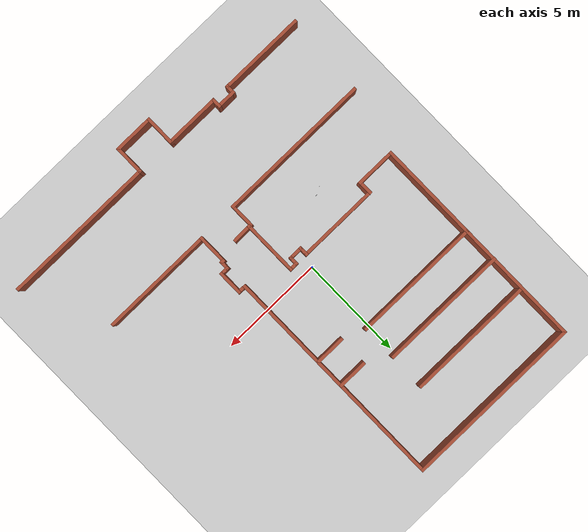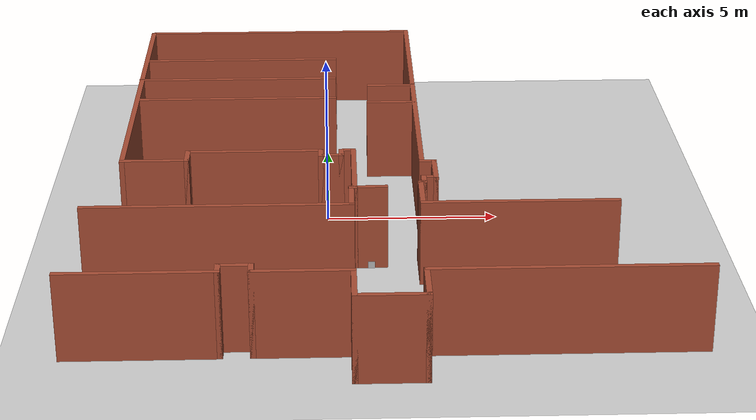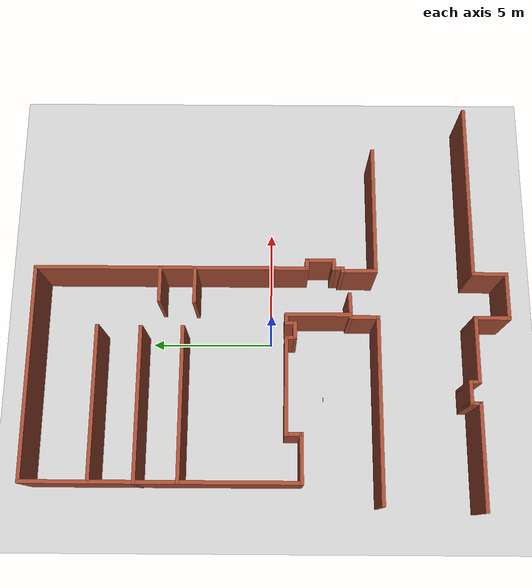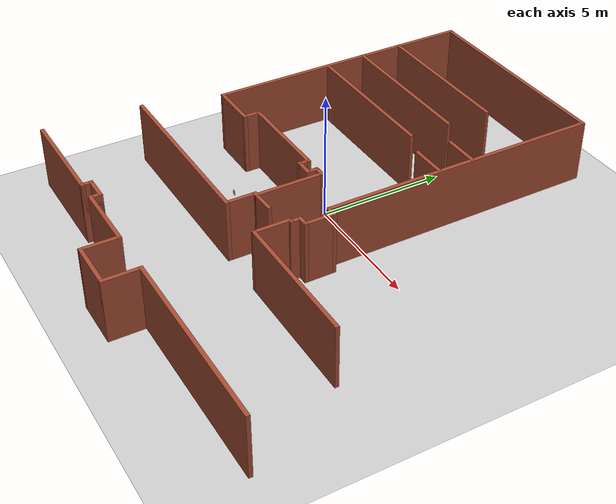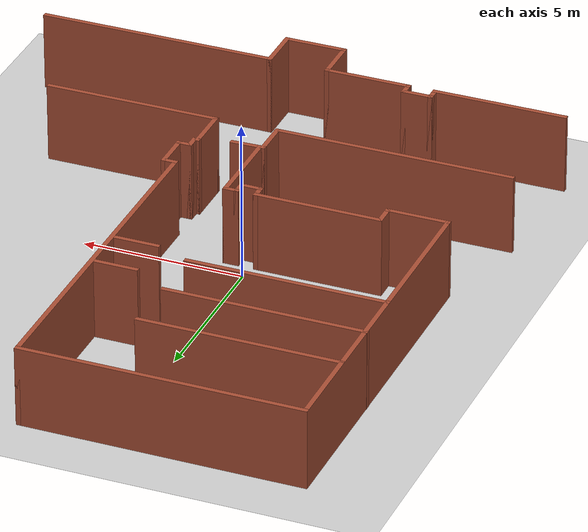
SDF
<sdf version="1.7">
 <world name="default">
  <light name="sun" type="directional">
   <pose>0 0 10 0 -0 0</pose>
   <diffuse>0.8 0.8 0.8 1</diffuse>
   <specular>0.2 0.2 0.2 1</specular>
   <attenuation>
    <range>1000</range>
    <constant>0.9</constant>
    <linear>0.01</linear>
    <quadratic>0.001</quadratic>
   </attenuation>
   <direction>-0.5 0.1 -0.9</direction>
   <spot><inner_angle>0</inner_angle><outer_angle>0</outer_angle><falloff>0</falloff></spot>
  </light>
  <model name="ground_plane">
   <static>1</static>
   <link name="link">
    <collision name="collision">
     <geometry><plane><normal>0 0 1</normal><size>100 100</size></plane></geometry>
     <surface><friction><ode><mu>100</mu><mu2>50</mu2></ode></friction></surface>
    </collision>
    <visual name="visual">
     <cast_shadows>0</cast_shadows>
     <geometry><plane><normal>0 0 1</normal><size>100 100</size></plane></geometry>
     <material>
      <script><uri>file://media/materials/scripts/gazebo.material</uri><name>Gazebo/Grey</name></script>
     </material>
    </visual>
   </link>
  </model>
  <gravity>0 0 -9.8</gravity>
  <magnetic_field>6e-06 2.3e-05 -4.2e-05</magnetic_field>
  <atmosphere type="adiabatic"/>
  <physics type="ode">
   <max_step_size>0.001</max_step_size>
   <real_time_factor>1</real_time_factor>
   <real_time_update_rate>1000</real_time_update_rate>
  </physics>
  <scene><ambient>0.4 0.4 0.4 1</ambient><background>0.7 0.7 0.7 1</background><shadows>1</shadows></scene>
  <spherical_coordinates>
   <surface_model>EARTH_WGS84</surface_model>
   <latitude_deg>0</latitude_deg>
   <longitude_deg>0</longitude_deg>
   <elevation>0</elevation>
   <heading_deg>0</heading_deg>
  </spherical_coordinates>
  <model name="clase">
   <pose>1.47483 0.04807 0 0 -0 0</pose>
   <link name="Wall_1">
    <collision name="Wall_1_Collision">
     <geometry><box><size>1.00041 0.15 2.5</size></box></geometry>
     <pose>0 0 1.25 0 -0 0</pose>
    </collision>
    <visual name="Wall_1_Visual">
     <pose>0 0 1.25 0 -0 0</pose>
     <geometry><box><size>1.00041 0.15 2.5</size></box></geometry>
     <material>
      <script><uri>file://media/materials/scripts/gazebo.material</uri><name>Gazebo/Bricks</name></script>
      <ambient>1 1 1 1</ambient>
     </material>
     <meta><layer>0</layer></meta>
    </visual>
    <pose>-0.295195 -3.22706 0 0 -0 -3.11049</pose>
   </link>
   <link name="Wall_10">
    <collision name="Wall_10_Collision">
     <geometry><box><size>4 0.15 2.5</size></box></geometry>
     <pose>0 0 1.25 0 -0 0</pose>
    </collision>
    <visual name="Wall_10_Visual">
     <pose>0 0 1.25 0 -0 0</pose>
     <geometry><box><size>4 0.15 2.5</size></box></geometry>
     <material>
      <script><uri>file://media/materials/scripts/gazebo.material</uri><name>Gazebo/Bricks</name></script>
      <ambient>1 1 1 1</ambient>
     </material>
     <meta><layer>0</layer></meta>
    </visual>
    <pose>-3.59519 -0.640283 0 0 -0 3.14159</pose>
   </link>
   <link name="Wall_11">
    <collision name="Wall_11_Collision">
     <geometry><box><size>0.75 0.15 2.5</size></box></geometry>
     <pose>0 0 1.25 0 -0 0</pose>
    </collision>
    <visual name="Wall_11_Visual">
     <pose>0 0 1.25 0 -0 0</pose>
     <geometry><box><size>0.75 0.15 2.5</size></box></geometry>
     <material>
      <script><uri>file://media/materials/scripts/gazebo.material</uri><name>Gazebo/Bricks</name></script>
      <ambient>1 1 1 1</ambient>
     </material>
     <meta><layer>0</layer></meta>
    </visual>
    <pose>-5.5202 -0.940283 0 0 -0 -1.5708</pose>
   </link>
   <link name="Wall_12">
    <collision name="Wall_12_Collision">
     <geometry><box><size>2 0.15 2.5</size></box></geometry>
     <pose>0 0 1.25 0 -0 0</pose>
    </collision>
    <visual name="Wall_12_Visual">
     <pose>0 0 1.25 0 -0 0</pose>
     <geometry><box><size>2 0.15 2.5</size></box></geometry>
     <material>
      <script><uri>file://media/materials/scripts/gazebo.material</uri><name>Gazebo/Bricks</name></script>
      <ambient>1 1 1 1</ambient>
     </material>
     <meta><layer>0</layer></meta>
    </visual>
    <pose>-6.4452 -1.24028 0 0 -0 3.14159</pose>
   </link>
   <link name="Wall_13">
    <collision name="Wall_13_Collision">
     <geometry><box><size>11 0.15 2.5</size></box></geometry>
     <pose>0 0 1.25 0 -0 0</pose>
    </collision>
    <visual name="Wall_13_Visual">
     <pose>0 0 1.25 0 -0 0</pose>
     <geometry><box><size>11 0.15 2.5</size></box></geometry>
     <material>
      <script><uri>file://media/materials/scripts/gazebo.material</uri><name>Gazebo/Bricks</name></script>
      <ambient>1 1 1 1</ambient>
     </material>
     <meta><layer>0</layer></meta>
    </visual>
    <pose>-7.37019 4.18472 0 0 -0 1.5708</pose>
   </link>
   <link name="Wall_14">
    <collision name="Wall_14_Collision">
     <geometry><box><size>8.75 0.15 2.5</size></box></geometry>
     <pose>0 0 1.25 0 -0 0</pose>
    </collision>
    <visual name="Wall_14_Visual">
     <pose>0 0 1.25 0 -0 0</pose>
     <geometry><box><size>8.75 0.15 2.5</size></box></geometry>
     <material>
      <script><uri>file://media/materials/scripts/gazebo.material</uri><name>Gazebo/Bricks</name></script>
      <ambient>1 1 1 1</ambient>
     </material>
     <meta><layer>0</layer></meta>
    </visual>
    <pose>-3.0702 9.60972 0 0 -0 0</pose>
   </link>
   <link name="Wall_15">
    <collision name="Wall_15_Collision">
     <geometry><box><size>11.25 0.15 2.5</size></box></geometry>
     <pose>0 0 1.25 0 -0 0</pose>
    </collision>
    <visual name="Wall_15_Visual">
     <pose>0 0 1.25 0 -0 0</pose>
     <geometry><box><size>11.25 0.15 2.5</size></box></geometry>
     <material>
      <script><uri>file://media/materials/scripts/gazebo.material</uri><name>Gazebo/Bricks</name></script>
      <ambient>1 1 1 1</ambient>
     </material>
     <meta><layer>0</layer></meta>
    </visual>
    <pose>1.22981 4.05972 0 0 -0 -1.5708</pose>
   </link>
   <link name="Wall_16">
    <collision name="Wall_16_Collision">
     <geometry><box><size>0.5 0.15 2.5</size></box></geometry>
     <pose>0 0 1.25 0 -0 0</pose>
    </collision>
    <visual name="Wall_16_Visual">
     <pose>0 0 1.25 0 -0 0</pose>
     <geometry><box><size>0.5 0.15 2.5</size></box></geometry>
     <material>
      <script><uri>file://media/materials/scripts/gazebo.material</uri><name>Gazebo/Bricks</name></script>
      <ambient>1 1 1 1</ambient>
     </material>
     <meta><layer>0</layer></meta>
    </visual>
    <pose>1.40481 -1.49028 0 0 -0 0</pose>
   </link>
   <link name="Wall_17">
    <collision name="Wall_17_Collision">
     <geometry><box><size>1.25 0.15 2.5</size></box></geometry>
     <pose>0 0 1.25 0 -0 0</pose>
    </collision>
    <visual name="Wall_17_Visual">
     <pose>0 0 1.25 0 -0 0</pose>
     <geometry><box><size>1.25 0.15 2.5</size></box></geometry>
     <material>
      <script><uri>file://media/materials/scripts/gazebo.material</uri><name>Gazebo/Bricks</name></script>
      <ambient>1 1 1 1</ambient>
     </material>
     <meta><layer>0</layer></meta>
    </visual>
    <pose>1.5798 -2.04028 0 0 -0 -1.5708</pose>
   </link>
   <link name="Wall_18">
    <collision name="Wall_18_Collision">
     <geometry><box><size>0.5 0.15 2.5</size></box></geometry>
     <pose>0 0 1.25 0 -0 0</pose>
    </collision>
    <visual name="Wall_18_Visual">
     <pose>0 0 1.25 0 -0 0</pose>
     <geometry><box><size>0.5 0.15 2.5</size></box></geometry>
     <material>
      <script><uri>file://media/materials/scripts/gazebo.material</uri><name>Gazebo/Bricks</name></script>
      <ambient>1 1 1 1</ambient>
     </material>
     <meta><layer>0</layer></meta>
    </visual>
    <pose>1.40481 -2.59028 0 0 -0 3.14159</pose>
   </link>
   <link name="Wall_19">
    <collision name="Wall_19_Collision">
     <geometry><box><size>0.5 0.15 2.5</size></box></geometry>
     <pose>0 0 1.25 0 -0 0</pose>
    </collision>
    <visual name="Wall_19_Visual">
     <pose>0 0 1.25 0 -0 0</pose>
     <geometry><box><size>0.5 0.15 2.5</size></box></geometry>
     <material>
      <script><uri>file://media/materials/scripts/gazebo.material</uri><name>Gazebo/Bricks</name></script>
      <ambient>1 1 1 1</ambient>
     </material>
     <meta><layer>0</layer></meta>
    </visual>
    <pose>1.22981 -2.76528 0 0 -0 -1.5708</pose>
   </link>
   <link name="Wall_20">
    <collision name="Wall_20_Collision">
     <geometry><box><size>0.25 0.15 2.5</size></box></geometry>
     <pose>0 0 1.25 0 -0 0</pose>
    </collision>
    <visual name="Wall_20_Visual">
     <pose>0 0 1.25 0 -0 0</pose>
     <geometry><box><size>0.25 0.15 2.5</size></box></geometry>
     <material>
      <script><uri>file://media/materials/scripts/gazebo.material</uri><name>Gazebo/Bricks</name></script>
      <ambient>1 1 1 1</ambient>
     </material>
     <meta><layer>0</layer></meta>
    </visual>
    <pose>1.1798 -2.94028 0 0 -0 3.14159</pose>
   </link>
   <link name="Wall_21">
    <collision name="Wall_21_Collision">
     <geometry><box><size>1.5 0.15 2.5</size></box></geometry>
     <pose>0 0 1.25 0 -0 0</pose>
    </collision>
    <visual name="Wall_21_Visual">
     <pose>0 0 1.25 0 -0 0</pose>
     <geometry><box><size>1.5 0.15 2.5</size></box></geometry>
     <material>
      <script><uri>file://media/materials/scripts/gazebo.material</uri><name>Gazebo/Bricks</name></script>
      <ambient>1 1 1 1</ambient>
     </material>
     <meta><layer>0</layer></meta>
    </visual>
    <pose>1.1298 -3.61528 0 0 -0 -1.5708</pose>
   </link>
   <link name="Wall_22">
    <collision name="Wall_22_Collision">
     <geometry><box><size>5.5 0.15 2.5</size></box></geometry>
     <pose>0 0 1.25 0 -0 0</pose>
    </collision>
    <visual name="Wall_22_Visual">
     <pose>0 0 1.25 0 -0 0</pose>
     <geometry><box><size>5.5 0.15 2.5</size></box></geometry>
     <material>
      <script><uri>file://media/materials/scripts/gazebo.material</uri><name>Gazebo/Bricks</name></script>
      <ambient>1 1 1 1</ambient>
     </material>
     <meta><layer>0</layer></meta>
    </visual>
    <pose>3.8048 -4.29028 0 0 -0 0</pose>
   </link>
   <link name="Wall_24">
    <collision name="Wall_24_Collision">
     <geometry><box><size>0.25 0.15 2.5</size></box></geometry>
     <pose>0 0 1.25 0 -0 0</pose>
    </collision>
    <visual name="Wall_24_Visual">
     <pose>0 0 1.25 0 -0 0</pose>
     <geometry><box><size>0.25 0.15 2.5</size></box></geometry>
     <material>
      <script><uri>file://media/materials/scripts/gazebo.material</uri><name>Gazebo/Bricks</name></script>
      <ambient>1 1 1 1</ambient>
     </material>
     <meta><layer>0</layer></meta>
    </visual>
    <pose>-0.770195 -3.24028 0 0 -0 3.14159</pose>
   </link>
   <link name="Wall_25">
    <collision name="Wall_25_Collision">
     <geometry><box><size>1.25 0.15 2.5</size></box></geometry>
     <pose>0 0 1.25 0 -0 0</pose>
    </collision>
    <visual name="Wall_25_Visual">
     <pose>0 0 1.25 0 -0 0</pose>
     <geometry><box><size>1.25 0.15 2.5</size></box></geometry>
     <material>
      <script><uri>file://media/materials/scripts/gazebo.material</uri><name>Gazebo/Bricks</name></script>
      <ambient>1 1 1 1</ambient>
     </material>
     <meta><layer>0</layer></meta>
    </visual>
    <pose>-0.820195 -3.79028 0 0 -0 -1.5708</pose>
   </link>
   <link name="Wall_26">
    <collision name="Wall_26_Collision">
     <geometry><box><size>7.5 0.15 2.5</size></box></geometry>
     <pose>0 0 1.25 0 -0 0</pose>
    </collision>
    <visual name="Wall_26_Visual">
     <pose>0 0 1.25 0 -0 0</pose>
     <geometry><box><size>7.5 0.15 2.5</size></box></geometry>
     <material>
      <script><uri>file://media/materials/scripts/gazebo.material</uri><name>Gazebo/Bricks</name></script>
      <ambient>1 1 1 1</ambient>
     </material>
     <meta><layer>0</layer></meta>
    </visual>
    <pose>-4.49519 -4.34028 0 0 -0 3.14159</pose>
   </link>
   <link name="Wall_28">
    <collision name="Wall_28_Collision">
     <geometry><box><size>4.25 0.15 2.5</size></box></geometry>
     <pose>0 0 1.25 0 -0 0</pose>
    </collision>
    <visual name="Wall_28_Visual">
     <pose>0 0 1.25 0 -0 0</pose>
     <geometry><box><size>4.25 0.15 2.5</size></box></geometry>
     <material>
      <script><uri>file://media/materials/scripts/gazebo.material</uri><name>Gazebo/Bricks</name></script>
      <ambient>1 1 1 1</ambient>
     </material>
     <meta><layer>0</layer></meta>
    </visual>
    <pose>-6.325 -8.25972 0 0 -0 0</pose>
   </link>
   <link name="Wall_29">
    <collision name="Wall_29_Collision">
     <geometry><box><size>0.5 0.15 2.5</size></box></geometry>
     <pose>0 0 1.25 0 -0 0</pose>
    </collision>
    <visual name="Wall_29_Visual">
     <pose>0 0 1.25 0 -0 0</pose>
     <geometry><box><size>0.5 0.15 2.5</size></box></geometry>
     <material>
      <script><uri>file://media/materials/scripts/gazebo.material</uri><name>Gazebo/Bricks</name></script>
      <ambient>1 1 1 1</ambient>
     </material>
     <meta><layer>0</layer></meta>
    </visual>
    <pose>-4.275 -8.08472 0 0 -0 1.5708</pose>
   </link>
   <link name="Wall_30">
    <collision name="Wall_30_Collision">
     <geometry><box><size>1 0.15 2.5</size></box></geometry>
     <pose>0 0 1.25 0 -0 0</pose>
    </collision>
    <visual name="Wall_30_Visual">
     <pose>0 0 1.25 0 -0 0</pose>
     <geometry><box><size>1 0.15 2.5</size></box></geometry>
     <material>
      <script><uri>file://media/materials/scripts/gazebo.material</uri><name>Gazebo/Bricks</name></script>
      <ambient>1 1 1 1</ambient>
     </material>
     <meta><layer>0</layer></meta>
    </visual>
    <pose>-3.85 -7.90972 0 0 -0 0</pose>
   </link>
   <link name="Wall_31">
    <collision name="Wall_31_Collision">
     <geometry><box><size>0.5 0.15 2.5</size></box></geometry>
     <pose>0 0 1.25 0 -0 0</pose>
    </collision>
    <visual name="Wall_31_Visual">
     <pose>0 0 1.25 0 -0 0</pose>
     <geometry><box><size>0.5 0.15 2.5</size></box></geometry>
     <material>
      <script><uri>file://media/materials/scripts/gazebo.material</uri><name>Gazebo/Bricks</name></script>
      <ambient>1 1 1 1</ambient>
     </material>
     <meta><layer>0</layer></meta>
    </visual>
    <pose>-3.425 -8.08472 0 0 -0 -1.5708</pose>
   </link>
   <link name="Wall_32">
    <collision name="Wall_32_Collision">
     <geometry><box><size>2.75 0.15 2.5</size></box></geometry>
     <pose>0 0 1.25 0 -0 0</pose>
    </collision>
    <visual name="Wall_32_Visual">
     <pose>0 0 1.25 0 -0 0</pose>
     <geometry><box><size>2.75 0.15 2.5</size></box></geometry>
     <material>
      <script><uri>file://media/materials/scripts/gazebo.material</uri><name>Gazebo/Bricks</name></script>
      <ambient>1 1 1 1</ambient>
     </material>
     <meta><layer>0</layer></meta>
    </visual>
    <pose>-2.125 -8.25972 0 0 -0 0</pose>
   </link>
   <link name="Wall_34">
    <collision name="Wall_34_Collision">
     <geometry><box><size>1.5 0.15 2.5</size></box></geometry>
     <pose>0 0 1.25 0 -0 0</pose>
    </collision>
    <visual name="Wall_34_Visual">
     <pose>0 0 1.25 0 -0 0</pose>
     <geometry><box><size>1.5 0.15 2.5</size></box></geometry>
     <material>
      <script><uri>file://media/materials/scripts/gazebo.material</uri><name>Gazebo/Bricks</name></script>
      <ambient>1 1 1 1</ambient>
     </material>
     <meta><layer>0</layer></meta>
    </visual>
    <pose>-0.825 -8.93472 0 0 -0 -1.5708</pose>
   </link>
   <link name="Wall_35">
    <collision name="Wall_35_Collision">
     <geometry><box><size>2 0.15 2.5</size></box></geometry>
     <pose>0 0 1.25 0 -0 0</pose>
    </collision>
    <visual name="Wall_35_Visual">
     <pose>0 0 1.25 0 -0 0</pose>
     <geometry><box><size>2 0.15 2.5</size></box></geometry>
     <material>
      <script><uri>file://media/materials/scripts/gazebo.material</uri><name>Gazebo/Bricks</name></script>
      <ambient>1 1 1 1</ambient>
     </material>
     <meta><layer>0</layer></meta>
    </visual>
    <pose>0.1 -9.60972 0 0 -0 0</pose>
   </link>
   <link name="Wall_36">
    <collision name="Wall_36_Collision">
     <geometry><box><size>1.5 0.15 2.5</size></box></geometry>
     <pose>0 0 1.25 0 -0 0</pose>
    </collision>
    <visual name="Wall_36_Visual">
     <pose>0 0 1.25 0 -0 0</pose>
     <geometry><box><size>1.5 0.15 2.5</size></box></geometry>
     <material>
      <script><uri>file://media/materials/scripts/gazebo.material</uri><name>Gazebo/Bricks</name></script>
      <ambient>1 1 1 1</ambient>
     </material>
     <meta><layer>0</layer></meta>
    </visual>
    <pose>1.025 -8.93472 0 0 -0 1.5708</pose>
   </link>
   <link name="Wall_37">
    <collision name="Wall_37_Collision">
     <geometry><box><size>7.5 0.15 2.5</size></box></geometry>
     <pose>0 0 1.25 0 -0 0</pose>
    </collision>
    <visual name="Wall_37_Visual">
     <pose>0 0 1.25 0 -0 0</pose>
     <geometry><box><size>7.5 0.15 2.5</size></box></geometry>
     <material>
      <script><uri>file://media/materials/scripts/gazebo.material</uri><name>Gazebo/Bricks</name></script>
      <ambient>1 1 1 1</ambient>
     </material>
     <meta><layer>0</layer></meta>
    </visual>
    <pose>4.7 -8.25972 0 0 -0 0</pose>
   </link>
   <link name="Wall_39">
    <collision name="Wall_39_Collision">
     <geometry><box><size>6.25 0.15 2.5</size></box></geometry>
     <pose>0 0 1.25 0 -0 0</pose>
    </collision>
    <visual name="Wall_39_Visual">
     <pose>0 0 1.25 0 -0 0</pose>
     <geometry><box><size>6.25 0.15 2.5</size></box></geometry>
     <material>
      <script><uri>file://media/materials/scripts/gazebo.material</uri><name>Gazebo/Bricks</name></script>
      <ambient>1 1 1 1</ambient>
     </material>
     <meta><layer>0</layer></meta>
    </visual>
    <pose>-4.29821 6.95534 0 0 -0 0</pose>
   </link>
   <link name="Wall_41">
    <collision name="Wall_41_Collision">
     <geometry><box><size>6.25 0.15 2.5</size></box></geometry>
     <pose>0 0 1.25 0 -0 0</pose>
    </collision>
    <visual name="Wall_41_Visual">
     <pose>0 0 1.25 0 -0 0</pose>
     <geometry><box><size>6.25 0.15 2.5</size></box></geometry>
     <material>
      <script><uri>file://media/materials/scripts/gazebo.material</uri><name>Gazebo/Bricks</name></script>
      <ambient>1 1 1 1</ambient>
     </material>
     <meta><layer>0</layer></meta>
    </visual>
    <pose>-4.32868 5.20004 0 0 -0 0</pose>
   </link>
   <link name="Wall_43">
    <collision name="Wall_43_Collision">
     <geometry><box><size>6.25 0.15 2.5</size></box></geometry>
     <pose>0 0 1.25 0 -0 0</pose>
    </collision>
    <visual name="Wall_43_Visual">
     <pose>0 0 1.25 0 -0 0</pose>
     <geometry><box><size>6.25 0.15 2.5</size></box></geometry>
     <material>
      <script><uri>file://media/materials/scripts/gazebo.material</uri><name>Gazebo/Bricks</name></script>
      <ambient>1 1 1 1</ambient>
     </material>
     <meta><layer>0</layer></meta>
    </visual>
    <pose>-4.31649 3.51178 0 0 -0 0</pose>
   </link>
   <link name="Wall_45">
    <collision name="Wall_45_Collision">
     <geometry><box><size>1.5 0.15 2.5</size></box></geometry>
     <pose>0 0 1.25 0 -0 0</pose>
    </collision>
    <visual name="Wall_45_Visual">
     <pose>0 0 1.25 0 -0 0</pose>
     <geometry><box><size>1.5 0.15 2.5</size></box></geometry>
     <material>
      <script><uri>file://media/materials/scripts/gazebo.material</uri><name>Gazebo/Bricks</name></script>
      <ambient>1 1 1 1</ambient>
     </material>
     <meta><layer>0</layer></meta>
    </visual>
    <pose>0.543036 4.51742 0 0 -0 0</pose>
   </link>
   <link name="Wall_47">
    <collision name="Wall_47_Collision">
     <geometry><box><size>1.5 0.15 2.5</size></box></geometry>
     <pose>0 0 1.25 0 -0 0</pose>
    </collision>
    <visual name="Wall_47_Visual">
     <pose>0 0 1.25 0 -0 0</pose>
     <geometry><box><size>1.5 0.15 2.5</size></box></geometry>
     <material>
      <script><uri>file://media/materials/scripts/gazebo.material</uri><name>Gazebo/Bricks</name></script>
      <ambient>1 1 1 1</ambient>
     </material>
     <meta><layer>0</layer></meta>
    </visual>
    <pose>0.500372 3.09124 0 0 -0 0</pose>
   </link>
   <link name="Wall_5">
    <collision name="Wall_5_Collision">
     <geometry><box><size>2.75 0.15 2.5</size></box></geometry>
     <pose>0 0 1.25 0 -0 0</pose>
    </collision>
    <visual name="Wall_5_Visual">
     <pose>0 0 1.25 0 -0 0</pose>
     <geometry><box><size>2.75 0.15 2.5</size></box></geometry>
     <material>
      <script><uri>file://media/materials/scripts/gazebo.material</uri><name>Gazebo/Bricks</name></script>
      <ambient>1 1 1 1</ambient>
     </material>
     <meta><layer>0</layer></meta>
    </visual>
    <pose>-0.720195 -1.94028 0 0 -0 1.5708</pose>
   </link>
   <link name="Wall_6">
    <collision name="Wall_6_Collision">
     <geometry><box><size>0.5 0.15 2.5</size></box></geometry>
     <pose>0 0 1.25 0 -0 0</pose>
    </collision>
    <visual name="Wall_6_Visual">
     <pose>0 0 1.25 0 -0 0</pose>
     <geometry><box><size>0.5 0.15 2.5</size></box></geometry>
     <material>
      <script><uri>file://media/materials/scripts/gazebo.material</uri><name>Gazebo/Bricks</name></script>
      <ambient>1 1 1 1</ambient>
     </material>
     <meta><layer>0</layer></meta>
    </visual>
    <pose>-0.895195 -0.640283 0 0 -0 3.14159</pose>
   </link>
   <link name="Wall_7">
    <collision name="Wall_7_Collision">
     <geometry><box><size>0.5 0.15 2.5</size></box></geometry>
     <pose>0 0 1.25 0 -0 0</pose>
    </collision>
    <visual name="Wall_7_Visual">
     <pose>0 0 1.25 0 -0 0</pose>
     <geometry><box><size>0.5 0.15 2.5</size></box></geometry>
     <material>
      <script><uri>file://media/materials/scripts/gazebo.material</uri><name>Gazebo/Bricks</name></script>
      <ambient>1 1 1 1</ambient>
     </material>
     <meta><layer>0</layer></meta>
    </visual>
    <pose>-1.0702 -0.815283 0 0 -0 -1.5708</pose>
   </link>
   <link name="Wall_8">
    <collision name="Wall_8_Collision">
     <geometry><box><size>0.75 0.15 2.5</size></box></geometry>
     <pose>0 0 1.25 0 -0 0</pose>
    </collision>
    <visual name="Wall_8_Visual">
     <pose>0 0 1.25 0 -0 0</pose>
     <geometry><box><size>0.75 0.15 2.5</size></box></geometry>
     <material>
      <script><uri>file://media/materials/scripts/gazebo.material</uri><name>Gazebo/Bricks</name></script>
      <ambient>1 1 1 1</ambient>
     </material>
     <meta><layer>0</layer></meta>
    </visual>
    <pose>-1.3702 -0.990283 0 0 -0 3.14159</pose>
   </link>
   <link name="Wall_9">
    <collision name="Wall_9_Collision">
     <geometry><box><size>0.5 0.15 2.5</size></box></geometry>
     <pose>0 0 1.25 0 -0 0</pose>
    </collision>
    <visual name="Wall_9_Visual">
     <pose>0 0 1.25 0 -0 0</pose>
     <geometry><box><size>0.5 0.15 2.5</size></box></geometry>
     <material>
      <script><uri>file://media/materials/scripts/gazebo.material</uri><name>Gazebo/Bricks</name></script>
      <ambient>1 1 1 1</ambient>
     </material>
     <meta><layer>0</layer></meta>
    </visual>
    <pose>-1.6702 -0.815283 0 0 -0 1.5708</pose>
   </link>
   <static>1</static>
  </model>
  <model name="aruco_5">
   <static>0</static>
   <link name="aruco_link">
    <collision name="collision"><geometry><box><size>0.2 0.2 0.001</size></box></geometry></collision>
    <visual name="aruco_visual">
     <geometry><box><size>0.2 0.2 0.001</size></box></geometry>
     <material>
      <script>
       <uri>model://aruco_5/materials/scripts/</uri>
       <uri>model://aruco_5/materials/textures/</uri>
       <name>aruco_5_material</name>
      </script>
     </material>
    </visual>
    <inertial>
     <mass>0.01</mass>
     <inertia><ixx>1e-05</ixx><iyy>1e-05</iyy><izz>1e-05</izz><ixy>0</ixy><ixz>0</ixz><iyz>0</iyz></inertia>
    </inertial>
    <pose>0 0 0 3.14159 1.57079 3.14159</pose>
   </link>
   <pose>1.21029 -3.26225 0.1 7e-06 -5.1e-05 -1.55471</pose>
  </model>
  <model name="aruco_6">
   <static>0</static>
   <link name="aruco_link">
    <collision name="collision"><geometry><box><size>0.2 0.2 0.001</size></box></geometry></collision>
    <visual name="aruco_visual">
     <geometry><box><size>0.2 0.2 0.001</size></box></geometry>
     <material>
      <script>
       <uri>model://aruco_6/materials/scripts/</uri>
       <uri>model://aruco_6/materials/textures/</uri>
       <name>aruco_6_material</name>
      </script>
     </material>
    </visual>
    <inertial>
     <mass>0.01</mass>
     <inertia><ixx>1e-05</ixx><iyy>1e-05</iyy><izz>1e-05</izz><ixy>0</ixy><ixz>0</ixz><iyz>0</iyz></inertia>
    </inertial>
    <pose>0 0 0 3.14159 1.57079 3.14159</pose>
   </link>
   <pose>-2.82517 -2.36583 0.1 -7e-06 -0.000104 -1.5895</pose>
  </model>
  <model name="aruco_17">
   <static>0</static>
   <link name="aruco_link">
    <collision name="collision"><geometry><box><size>0.2 0.2 0.001</size></box></geometry></collision>
    <visual name="aruco_visual">
     <geometry><box><size>0.2 0.2 0.001</size></box></geometry>
     <material>
      <script>
       <uri>model://aruco_17/materials/scripts/</uri>
       <uri>model://aruco_17/materials/textures/</uri>
       <name>aruco_17_material</name>
      </script>
     </material>
    </visual>
    <inertial>
     <mass>0.01</mass>
     <inertia><ixx>1e-05</ixx><iyy>1e-05</iyy><izz>1e-05</izz><ixy>0</ixy><ixz>0</ixz><iyz>0</iyz></inertia>
    </inertial>
    <pose>0 0 0 3.14159 1.57079 3.14159</pose>
   </link>
   <pose>-2.30544 -2.17653 0.099996 -3.9e-05 -1.3e-05 -1.57912</pose>
  </model>
 </world>
</sdf>
